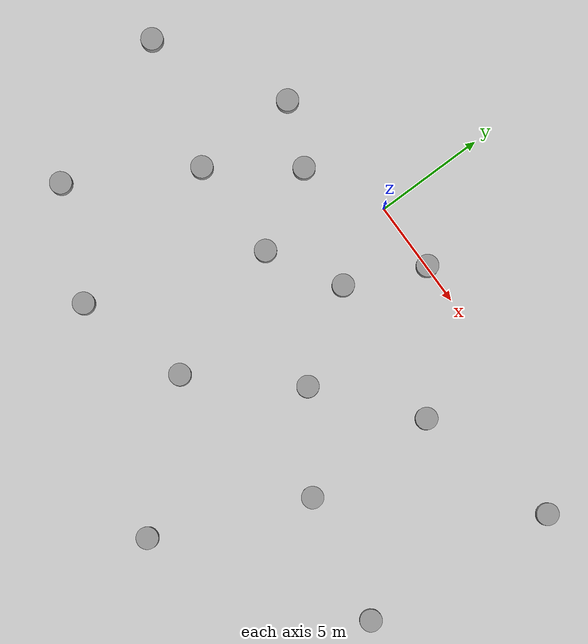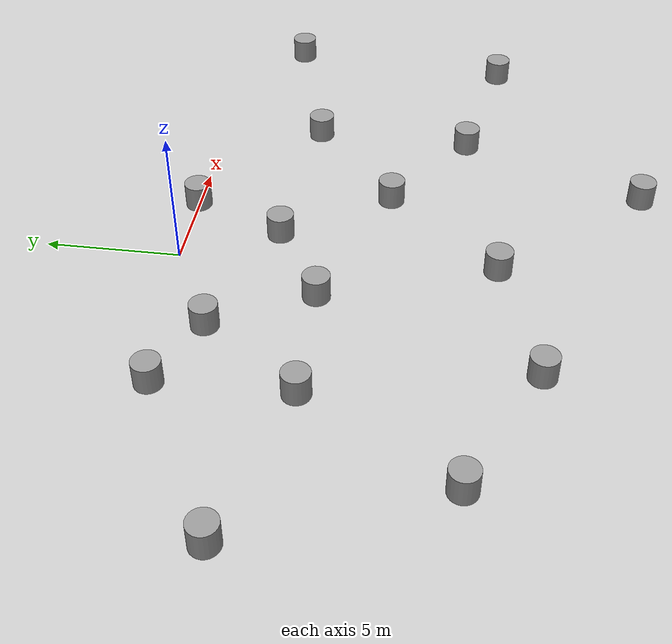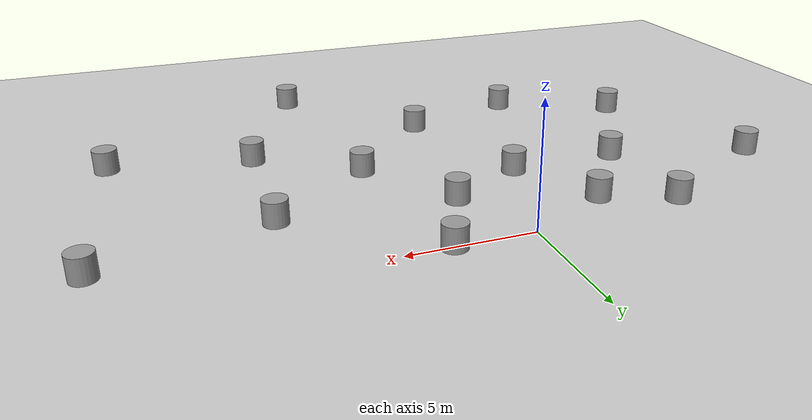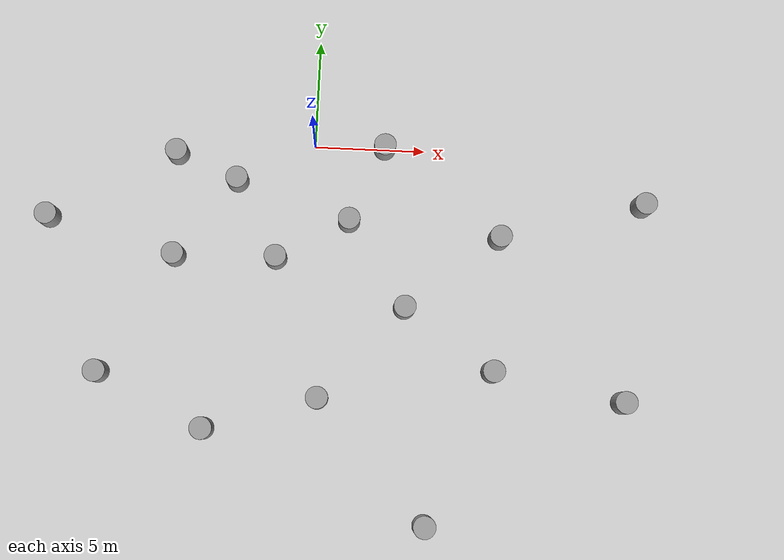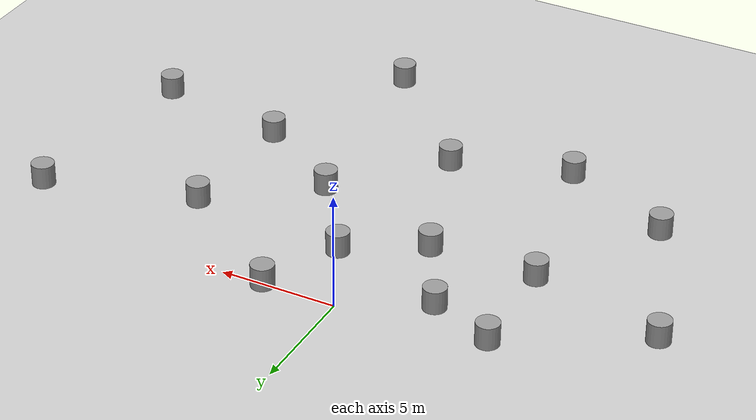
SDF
<sdf version="1.7">
 <world name="default">
  <model name="ground_plane">
   <static>1</static>
   <link name="link">
    <collision name="collision">
     <geometry><plane><normal>0 0 1</normal><size>100 100</size></plane></geometry>
     <surface>
      <contact><collide_bitmask>65535</collide_bitmask></contact>
      <friction><ode><mu>100</mu><mu2>50</mu2></ode></friction>
     </surface>
    </collision>
    <visual name="visual">
     <cast_shadows>0</cast_shadows>
     <geometry><plane><normal>0 0 1</normal><size>100 100</size></plane></geometry>
     <material>
      <script><uri>file://media/materials/scripts/gazebo.material</uri><name>Gazebo/Grey</name></script>
     </material>
    </visual>
   </link>
  </model>
  <model name="fix_cylinder_clone_2">
   <link name="link">
    <inertial>
     <mass>1</mass>
     <inertia><ixx>0.145833</ixx><ixy>0</ixy><ixz>0</ixz><iyy>0.145833</iyy><iyz>0</iyz><izz>0.125</izz></inertia>
    </inertial>
    <visual name="visual">
     <geometry><cylinder><radius>0.5</radius><length>1</length></cylinder></geometry>
     <material>
      <script><name>Gazebo/Grey</name><uri>file://media/materials/scripts/gazebo.material</uri></script>
      <shader type="pixel"/>
     </material>
    </visual>
    <collision name="collision">
     <geometry><cylinder><radius>0.5</radius><length>1</length></cylinder></geometry>
     <surface>
      <friction>
       <ode><mu>1</mu><mu2>1</mu2><fdir1>0 0 0</fdir1><slip1>0</slip1><slip2>0</slip2></ode>
       <torsional>
        <coefficient>1</coefficient>
        <patch_radius>0</patch_radius>
        <surface_radius>0</surface_radius>
        <use_patch_radius>1</use_patch_radius>
        <ode><slip>0</slip></ode>
       </torsional>
      </friction>
      <bounce><restitution_coefficient>0</restitution_coefficient><threshold>1e+06</threshold></bounce>
      <contact>
       <collide_without_contact>0</collide_without_contact>
       <collide_without_contact_bitmask>1</collide_without_contact_bitmask>
       <collide_bitmask>1</collide_bitmask>
       <ode>
        <soft_cfm>0</soft_cfm>
        <soft_erp>0.2</soft_erp>
        <kp>1e+13</kp>
        <kd>1</kd>
        <max_vel>0.01</max_vel>
        <min_depth>0</min_depth>
       </ode>
       <bullet>
        <split_impulse>1</split_impulse>
        <split_impulse_penetration_threshold>-0.01</split_impulse_penetration_threshold>
        <soft_cfm>0</soft_cfm>
        <soft_erp>0.2</soft_erp>
        <kp>1e+13</kp>
        <kd>1</kd>
       </bullet>
      </contact>
     </surface>
    </collision>
   </link>
   <static>1</static>
   <pose>3.17603 0.029626 0.5 0 -0 0</pose>
  </model>
  <model name="fix_cylinder_clone_9">
   <link name="link">
    <inertial>
     <mass>1</mass>
     <inertia><ixx>0.145833</ixx><ixy>0</ixy><ixz>0</ixz><iyy>0.145833</iyy><iyz>0</iyz><izz>0.125</izz></inertia>
    </inertial>
    <visual name="visual">
     <geometry><cylinder><radius>0.5</radius><length>1</length></cylinder></geometry>
     <material>
      <script><name>Gazebo/Grey</name><uri>file://media/materials/scripts/gazebo.material</uri></script>
      <shader type="pixel"/>
     </material>
    </visual>
    <collision name="collision">
     <geometry><cylinder><radius>0.5</radius><length>1</length></cylinder></geometry>
     <surface>
      <friction>
       <ode><mu>1</mu><mu2>1</mu2><fdir1>0 0 0</fdir1><slip1>0</slip1><slip2>0</slip2></ode>
       <torsional>
        <coefficient>1</coefficient>
        <patch_radius>0</patch_radius>
        <surface_radius>0</surface_radius>
        <use_patch_radius>1</use_patch_radius>
        <ode><slip>0</slip></ode>
       </torsional>
      </friction>
      <bounce><restitution_coefficient>0</restitution_coefficient><threshold>1e+06</threshold></bounce>
      <contact>
       <collide_without_contact>0</collide_without_contact>
       <collide_without_contact_bitmask>1</collide_without_contact_bitmask>
       <collide_bitmask>1</collide_bitmask>
       <ode>
        <soft_cfm>0</soft_cfm>
        <soft_erp>0.2</soft_erp>
        <kp>1e+13</kp>
        <kd>1</kd>
        <max_vel>0.01</max_vel>
        <min_depth>0</min_depth>
       </ode>
       <bullet>
        <split_impulse>1</split_impulse>
        <split_impulse_penetration_threshold>-0.01</split_impulse_penetration_threshold>
        <soft_cfm>0</soft_cfm>
        <soft_erp>0.2</soft_erp>
        <kp>1e+13</kp>
        <kd>1</kd>
       </bullet>
      </contact>
     </surface>
    </collision>
   </link>
   <static>1</static>
   <pose>-6.15841 -5.36804 0.5 0 -0 0</pose>
  </model>
  <model name="fix_cylinder_clone_10">
   <link name="link">
    <inertial>
     <mass>1</mass>
     <inertia><ixx>0.145833</ixx><ixy>0</ixy><ixz>0</ixz><iyy>0.145833</iyy><iyz>0</iyz><izz>0.125</izz></inertia>
    </inertial>
    <visual name="visual">
     <geometry><cylinder><radius>0.5</radius><length>1</length></cylinder></geometry>
     <material>
      <script><name>Gazebo/Grey</name><uri>file://media/materials/scripts/gazebo.material</uri></script>
      <shader type="pixel"/>
     </material>
    </visual>
    <collision name="collision">
     <geometry><cylinder><radius>0.5</radius><length>1</length></cylinder></geometry>
     <surface>
      <friction>
       <ode><mu>1</mu><mu2>1</mu2><fdir1>0 0 0</fdir1><slip1>0</slip1><slip2>0</slip2></ode>
       <torsional>
        <coefficient>1</coefficient>
        <patch_radius>0</patch_radius>
        <surface_radius>0</surface_radius>
        <use_patch_radius>1</use_patch_radius>
        <ode><slip>0</slip></ode>
       </torsional>
      </friction>
      <bounce><restitution_coefficient>0</restitution_coefficient><threshold>1e+06</threshold></bounce>
      <contact>
       <collide_without_contact>0</collide_without_contact>
       <collide_without_contact_bitmask>1</collide_without_contact_bitmask>
       <collide_bitmask>1</collide_bitmask>
       <ode>
        <soft_cfm>0</soft_cfm>
        <soft_erp>0.2</soft_erp>
        <kp>1e+13</kp>
        <kd>1</kd>
        <max_vel>0.01</max_vel>
        <min_depth>0</min_depth>
       </ode>
       <bullet>
        <split_impulse>1</split_impulse>
        <split_impulse_penetration_threshold>-0.01</split_impulse_penetration_threshold>
        <soft_cfm>0</soft_cfm>
        <soft_erp>0.2</soft_erp>
        <kp>1e+13</kp>
        <kd>1</kd>
       </bullet>
      </contact>
     </surface>
    </collision>
   </link>
   <static>1</static>
   <pose>-1.55441 -5.29117 0.5 0 -0 0</pose>
  </model>
  <model name="fix_cylinder_clone_11">
   <link name="link">
    <inertial>
     <mass>1</mass>
     <inertia><ixx>0.145833</ixx><ixy>0</ixy><ixz>0</ixz><iyy>0.145833</iyy><iyz>0</iyz><izz>0.125</izz></inertia>
    </inertial>
    <visual name="visual">
     <geometry><cylinder><radius>0.5</radius><length>1</length></cylinder></geometry>
     <material>
      <script><name>Gazebo/Grey</name><uri>file://media/materials/scripts/gazebo.material</uri></script>
      <shader type="pixel"/>
     </material>
    </visual>
    <collision name="collision">
     <geometry><cylinder><radius>0.5</radius><length>1</length></cylinder></geometry>
     <surface>
      <friction>
       <ode><mu>1</mu><mu2>1</mu2><fdir1>0 0 0</fdir1><slip1>0</slip1><slip2>0</slip2></ode>
       <torsional>
        <coefficient>1</coefficient>
        <patch_radius>0</patch_radius>
        <surface_radius>0</surface_radius>
        <use_patch_radius>1</use_patch_radius>
        <ode><slip>0</slip></ode>
       </torsional>
      </friction>
      <bounce><restitution_coefficient>0</restitution_coefficient><threshold>1e+06</threshold></bounce>
      <contact>
       <collide_without_contact>0</collide_without_contact>
       <collide_without_contact_bitmask>1</collide_without_contact_bitmask>
       <collide_bitmask>1</collide_bitmask>
       <ode>
        <soft_cfm>0</soft_cfm>
        <soft_erp>0.2</soft_erp>
        <kp>1e+13</kp>
        <kd>1</kd>
        <max_vel>0.01</max_vel>
        <min_depth>0</min_depth>
       </ode>
       <bullet>
        <split_impulse>1</split_impulse>
        <split_impulse_penetration_threshold>-0.01</split_impulse_penetration_threshold>
        <soft_cfm>0</soft_cfm>
        <soft_erp>0.2</soft_erp>
        <kp>1e+13</kp>
        <kd>1</kd>
       </bullet>
      </contact>
     </surface>
    </collision>
   </link>
   <static>1</static>
   <pose>0.602478 -11.5192 0.5 0 -0 0</pose>
  </model>
  <model name="fix_cylinder_clone_12">
   <link name="link">
    <inertial>
     <mass>1</mass>
     <inertia><ixx>0.145833</ixx><ixy>0</ixy><ixz>0</ixz><iyy>0.145833</iyy><iyz>0</iyz><izz>0.125</izz></inertia>
    </inertial>
    <visual name="visual">
     <geometry><cylinder><radius>0.5</radius><length>1</length></cylinder></geometry>
     <material>
      <script><name>Gazebo/Grey</name><uri>file://media/materials/scripts/gazebo.material</uri></script>
      <shader type="pixel"/>
     </material>
    </visual>
    <collision name="collision">
     <geometry><cylinder><radius>0.5</radius><length>1</length></cylinder></geometry>
     <surface>
      <friction>
       <ode><mu>1</mu><mu2>1</mu2><fdir1>0 0 0</fdir1><slip1>0</slip1><slip2>0</slip2></ode>
       <torsional>
        <coefficient>1</coefficient>
        <patch_radius>0</patch_radius>
        <surface_radius>0</surface_radius>
        <use_patch_radius>1</use_patch_radius>
        <ode><slip>0</slip></ode>
       </torsional>
      </friction>
      <bounce><restitution_coefficient>0</restitution_coefficient><threshold>1e+06</threshold></bounce>
      <contact>
       <collide_without_contact>0</collide_without_contact>
       <collide_without_contact_bitmask>1</collide_without_contact_bitmask>
       <collide_bitmask>1</collide_bitmask>
       <ode>
        <soft_cfm>0</soft_cfm>
        <soft_erp>0.2</soft_erp>
        <kp>1e+13</kp>
        <kd>1</kd>
        <max_vel>0.01</max_vel>
        <min_depth>0</min_depth>
       </ode>
       <bullet>
        <split_impulse>1</split_impulse>
        <split_impulse_penetration_threshold>-0.01</split_impulse_penetration_threshold>
        <soft_cfm>0</soft_cfm>
        <soft_erp>0.2</soft_erp>
        <kp>1e+13</kp>
        <kd>1</kd>
       </bullet>
      </contact>
     </surface>
    </collision>
   </link>
   <static>1</static>
   <pose>4.33584 -7.31858 0.5 0 -0 0</pose>
  </model>
  <model name="fix_cylinder_clone_13">
   <link name="link">
    <inertial>
     <mass>1</mass>
     <inertia><ixx>0.145833</ixx><ixy>0</ixy><ixz>0</ixz><iyy>0.145833</iyy><iyz>0</iyz><izz>0.125</izz></inertia>
    </inertial>
    <visual name="visual">
     <geometry><cylinder><radius>0.5</radius><length>1</length></cylinder></geometry>
     <material>
      <script><name>Gazebo/Grey</name><uri>file://media/materials/scripts/gazebo.material</uri></script>
      <shader type="pixel"/>
     </material>
    </visual>
    <collision name="collision">
     <geometry><cylinder><radius>0.5</radius><length>1</length></cylinder></geometry>
     <surface>
      <friction>
       <ode><mu>1</mu><mu2>1</mu2><fdir1>0 0 0</fdir1><slip1>0</slip1><slip2>0</slip2></ode>
       <torsional>
        <coefficient>1</coefficient>
        <patch_radius>0</patch_radius>
        <surface_radius>0</surface_radius>
        <use_patch_radius>1</use_patch_radius>
        <ode><slip>0</slip></ode>
       </torsional>
      </friction>
      <bounce><restitution_coefficient>0</restitution_coefficient><threshold>1e+06</threshold></bounce>
      <contact>
       <collide_without_contact>0</collide_without_contact>
       <collide_without_contact_bitmask>1</collide_without_contact_bitmask>
       <collide_bitmask>1</collide_bitmask>
       <ode>
        <soft_cfm>0</soft_cfm>
        <soft_erp>0.2</soft_erp>
        <kp>1e+13</kp>
        <kd>1</kd>
        <max_vel>0.01</max_vel>
        <min_depth>0</min_depth>
       </ode>
       <bullet>
        <split_impulse>1</split_impulse>
        <split_impulse_penetration_threshold>-0.01</split_impulse_penetration_threshold>
        <soft_cfm>0</soft_cfm>
        <soft_erp>0.2</soft_erp>
        <kp>1e+13</kp>
        <kd>1</kd>
       </bullet>
      </contact>
     </surface>
    </collision>
   </link>
   <static>1</static>
   <pose>8.53556 -3.96647 0.5 0 -0 0</pose>
  </model>
  <model name="fix_cylinder_clone_14">
   <link name="link">
    <inertial>
     <mass>1</mass>
     <inertia><ixx>0.145833</ixx><ixy>0</ixy><ixz>0</ixz><iyy>0.145833</iyy><iyz>0</iyz><izz>0.125</izz></inertia>
    </inertial>
    <visual name="visual">
     <geometry><cylinder><radius>0.5</radius><length>1</length></cylinder></geometry>
     <material>
      <script><name>Gazebo/Grey</name><uri>file://media/materials/scripts/gazebo.material</uri></script>
      <shader type="pixel"/>
     </material>
    </visual>
    <collision name="collision">
     <geometry><cylinder><radius>0.5</radius><length>1</length></cylinder></geometry>
     <surface>
      <friction>
       <ode><mu>1</mu><mu2>1</mu2><fdir1>0 0 0</fdir1><slip1>0</slip1><slip2>0</slip2></ode>
       <torsional>
        <coefficient>1</coefficient>
        <patch_radius>0</patch_radius>
        <surface_radius>0</surface_radius>
        <use_patch_radius>1</use_patch_radius>
        <ode><slip>0</slip></ode>
       </torsional>
      </friction>
      <bounce><restitution_coefficient>0</restitution_coefficient><threshold>1e+06</threshold></bounce>
      <contact>
       <collide_without_contact>0</collide_without_contact>
       <collide_without_contact_bitmask>1</collide_without_contact_bitmask>
       <collide_bitmask>1</collide_bitmask>
       <ode>
        <soft_cfm>0</soft_cfm>
        <soft_erp>0.2</soft_erp>
        <kp>1e+13</kp>
        <kd>1</kd>
        <max_vel>0.01</max_vel>
        <min_depth>0</min_depth>
       </ode>
       <bullet>
        <split_impulse>1</split_impulse>
        <split_impulse_penetration_threshold>-0.01</split_impulse_penetration_threshold>
        <soft_cfm>0</soft_cfm>
        <soft_erp>0.2</soft_erp>
        <kp>1e+13</kp>
        <kd>1</kd>
       </bullet>
      </contact>
     </surface>
    </collision>
   </link>
   <static>1</static>
   <pose>8.36577 -10.022 0.5 0 -0 0</pose>
  </model>
  <model name="fix_cylinder_clone_15">
   <link name="link">
    <inertial>
     <mass>1</mass>
     <inertia><ixx>0.145833</ixx><ixy>0</ixy><ixz>0</ixz><iyy>0.145833</iyy><iyz>0</iyz><izz>0.125</izz></inertia>
    </inertial>
    <visual name="visual">
     <geometry><cylinder><radius>0.5</radius><length>1</length></cylinder></geometry>
     <material>
      <script><name>Gazebo/Grey</name><uri>file://media/materials/scripts/gazebo.material</uri></script>
      <shader type="pixel"/>
     </material>
    </visual>
    <collision name="collision">
     <geometry><cylinder><radius>0.5</radius><length>1</length></cylinder></geometry>
     <surface>
      <friction>
       <ode><mu>1</mu><mu2>1</mu2><fdir1>0 0 0</fdir1><slip1>0</slip1><slip2>0</slip2></ode>
       <torsional>
        <coefficient>1</coefficient>
        <patch_radius>0</patch_radius>
        <surface_radius>0</surface_radius>
        <use_patch_radius>1</use_patch_radius>
        <ode><slip>0</slip></ode>
       </torsional>
      </friction>
      <bounce><restitution_coefficient>0</restitution_coefficient><threshold>1e+06</threshold></bounce>
      <contact>
       <collide_without_contact>0</collide_without_contact>
       <collide_without_contact_bitmask>1</collide_without_contact_bitmask>
       <collide_bitmask>1</collide_bitmask>
       <ode>
        <soft_cfm>0</soft_cfm>
        <soft_erp>0.2</soft_erp>
        <kp>1e+13</kp>
        <kd>1</kd>
        <max_vel>0.01</max_vel>
        <min_depth>0</min_depth>
       </ode>
       <bullet>
        <split_impulse>1</split_impulse>
        <split_impulse_penetration_threshold>-0.01</split_impulse_penetration_threshold>
        <soft_cfm>0</soft_cfm>
        <soft_erp>0.2</soft_erp>
        <kp>1e+13</kp>
        <kd>1</kd>
       </bullet>
      </contact>
     </surface>
    </collision>
   </link>
   <static>1</static>
   <pose>1.68194 -3.44944 0.5 0 -0 0</pose>
  </model>
  <model name="fix_cylinder_clone_16">
   <link name="link">
    <inertial>
     <mass>1</mass>
     <inertia><ixx>0.145833</ixx><ixy>0</ixy><ixz>0</ixz><iyy>0.145833</iyy><iyz>0</iyz><izz>0.125</izz></inertia>
    </inertial>
    <visual name="visual">
     <geometry><cylinder><radius>0.5</radius><length>1</length></cylinder></geometry>
     <material>
      <script><name>Gazebo/Grey</name><uri>file://media/materials/scripts/gazebo.material</uri></script>
      <shader type="pixel"/>
     </material>
    </visual>
    <collision name="collision">
     <geometry><cylinder><radius>0.5</radius><length>1</length></cylinder></geometry>
     <surface>
      <friction>
       <ode><mu>1</mu><mu2>1</mu2><fdir1>0 0 0</fdir1><slip1>0</slip1><slip2>0</slip2></ode>
       <torsional>
        <coefficient>1</coefficient>
        <patch_radius>0</patch_radius>
        <surface_radius>0</surface_radius>
        <use_patch_radius>1</use_patch_radius>
        <ode><slip>0</slip></ode>
       </torsional>
      </friction>
      <bounce><restitution_coefficient>0</restitution_coefficient><threshold>1e+06</threshold></bounce>
      <contact>
       <collide_without_contact>0</collide_without_contact>
       <collide_without_contact_bitmask>1</collide_without_contact_bitmask>
       <collide_bitmask>1</collide_bitmask>
       <ode>
        <soft_cfm>0</soft_cfm>
        <soft_erp>0.2</soft_erp>
        <kp>1e+13</kp>
        <kd>1</kd>
        <max_vel>0.01</max_vel>
        <min_depth>0</min_depth>
       </ode>
       <bullet>
        <split_impulse>1</split_impulse>
        <split_impulse_penetration_threshold>-0.01</split_impulse_penetration_threshold>
        <soft_cfm>0</soft_cfm>
        <soft_erp>0.2</soft_erp>
        <kp>1e+13</kp>
        <kd>1</kd>
       </bullet>
      </contact>
     </surface>
    </collision>
   </link>
   <static>1</static>
   <pose>-3.48333 -1.77806 0.5 0 -0 0</pose>
  </model>
  <model name="fix_cylinder_clone_17">
   <link name="link">
    <inertial>
     <mass>1</mass>
     <inertia><ixx>0.145833</ixx><ixy>0</ixy><ixz>0</ixz><iyy>0.145833</iyy><iyz>0</iyz><izz>0.125</izz></inertia>
    </inertial>
    <visual name="visual">
     <geometry><cylinder><radius>0.5</radius><length>1</length></cylinder></geometry>
     <material>
      <script><name>Gazebo/Grey</name><uri>file://media/materials/scripts/gazebo.material</uri></script>
      <shader type="pixel"/>
     </material>
    </visual>
    <collision name="collision">
     <geometry><cylinder><radius>0.5</radius><length>1</length></cylinder></geometry>
     <surface>
      <friction>
       <ode><mu>1</mu><mu2>1</mu2><fdir1>0 0 0</fdir1><slip1>0</slip1><slip2>0</slip2></ode>
       <torsional>
        <coefficient>1</coefficient>
        <patch_radius>0</patch_radius>
        <surface_radius>0</surface_radius>
        <use_patch_radius>1</use_patch_radius>
        <ode><slip>0</slip></ode>
       </torsional>
      </friction>
      <bounce><restitution_coefficient>0</restitution_coefficient><threshold>1e+06</threshold></bounce>
      <contact>
       <collide_without_contact>0</collide_without_contact>
       <collide_without_contact_bitmask>1</collide_without_contact_bitmask>
       <collide_bitmask>1</collide_bitmask>
       <ode>
        <soft_cfm>0</soft_cfm>
        <soft_erp>0.2</soft_erp>
        <kp>1e+13</kp>
        <kd>1</kd>
        <max_vel>0.01</max_vel>
        <min_depth>0</min_depth>
       </ode>
       <bullet>
        <split_impulse>1</split_impulse>
        <split_impulse_penetration_threshold>-0.01</split_impulse_penetration_threshold>
        <soft_cfm>0</soft_cfm>
        <soft_erp>0.2</soft_erp>
        <kp>1e+13</kp>
        <kd>1</kd>
       </bullet>
      </contact>
     </surface>
    </collision>
   </link>
   <static>1</static>
   <pose>-6.29919 -0.609601 0.5 0 -0 0</pose>
  </model>
  <model name="fix_cylinder_clone_23">
   <link name="link">
    <inertial>
     <mass>1</mass>
     <inertia><ixx>0.145833</ixx><ixy>0</ixy><ixz>0</ixz><iyy>0.145833</iyy><iyz>0</iyz><izz>0.125</izz></inertia>
    </inertial>
    <visual name="visual">
     <geometry><cylinder><radius>0.5</radius><length>1</length></cylinder></geometry>
     <material>
      <script><name>Gazebo/Grey</name><uri>file://media/materials/scripts/gazebo.material</uri></script>
      <shader type="pixel"/>
     </material>
    </visual>
    <collision name="collision">
     <geometry><cylinder><radius>0.5</radius><length>1</length></cylinder></geometry>
     <surface>
      <friction>
       <ode><mu>1</mu><mu2>1</mu2><fdir1>0 0 0</fdir1><slip1>0</slip1><slip2>0</slip2></ode>
       <torsional>
        <coefficient>1</coefficient>
        <patch_radius>0</patch_radius>
        <surface_radius>0</surface_radius>
        <use_patch_radius>1</use_patch_radius>
        <ode><slip>0</slip></ode>
       </torsional>
      </friction>
      <bounce><restitution_coefficient>0</restitution_coefficient><threshold>1e+06</threshold></bounce>
      <contact>
       <collide_without_contact>0</collide_without_contact>
       <collide_without_contact_bitmask>1</collide_without_contact_bitmask>
       <collide_bitmask>1</collide_bitmask>
       <ode>
        <soft_cfm>0</soft_cfm>
        <soft_erp>0.2</soft_erp>
        <kp>1e+13</kp>
        <kd>1</kd>
        <max_vel>0.01</max_vel>
        <min_depth>0</min_depth>
       </ode>
       <bullet>
        <split_impulse>1</split_impulse>
        <split_impulse_penetration_threshold>-0.01</split_impulse_penetration_threshold>
        <soft_cfm>0</soft_cfm>
        <soft_erp>0.2</soft_erp>
        <kp>1e+13</kp>
        <kd>1</kd>
       </bullet>
      </contact>
     </surface>
    </collision>
   </link>
   <static>1</static>
   <pose>-4.40328 -13.0665 0.5 0 -0 0</pose>
  </model>
  <model name="fix_cylinder_clone_24">
   <link name="link">
    <inertial>
     <mass>1</mass>
     <inertia><ixx>0.145833</ixx><ixy>0</ixy><ixz>0</ixz><iyy>0.145833</iyy><iyz>0</iyz><izz>0.125</izz></inertia>
    </inertial>
    <visual name="visual">
     <geometry><cylinder><radius>0.5</radius><length>1</length></cylinder></geometry>
     <material>
      <script><name>Gazebo/Grey</name><uri>file://media/materials/scripts/gazebo.material</uri></script>
      <shader type="pixel"/>
     </material>
    </visual>
    <collision name="collision">
     <geometry><cylinder><radius>0.5</radius><length>1</length></cylinder></geometry>
     <surface>
      <friction>
       <ode><mu>1</mu><mu2>1</mu2><fdir1>0 0 0</fdir1><slip1>0</slip1><slip2>0</slip2></ode>
       <torsional>
        <coefficient>1</coefficient>
        <patch_radius>0</patch_radius>
        <surface_radius>0</surface_radius>
        <use_patch_radius>1</use_patch_radius>
        <ode><slip>0</slip></ode>
       </torsional>
      </friction>
      <bounce><restitution_coefficient>0</restitution_coefficient><threshold>1e+06</threshold></bounce>
      <contact>
       <collide_without_contact>0</collide_without_contact>
       <collide_without_contact_bitmask>1</collide_without_contact_bitmask>
       <collide_bitmask>1</collide_bitmask>
       <ode>
        <soft_cfm>0</soft_cfm>
        <soft_erp>0.2</soft_erp>
        <kp>1e+13</kp>
        <kd>1</kd>
        <max_vel>0.01</max_vel>
        <min_depth>0</min_depth>
       </ode>
       <bullet>
        <split_impulse>1</split_impulse>
        <split_impulse_penetration_threshold>-0.01</split_impulse_penetration_threshold>
        <soft_cfm>0</soft_cfm>
        <soft_erp>0.2</soft_erp>
        <kp>1e+13</kp>
        <kd>1</kd>
       </bullet>
      </contact>
     </surface>
    </collision>
   </link>
   <static>1</static>
   <pose>-9.25318 -10.7582 0.5 0 -0 0</pose>
  </model>
  <model name="fix_cylinder_clone_25">
   <link name="link">
    <inertial>
     <mass>1</mass>
     <inertia><ixx>0.145833</ixx><ixy>0</ixy><ixz>0</ixz><iyy>0.145833</iyy><iyz>0</iyz><izz>0.125</izz></inertia>
    </inertial>
    <visual name="visual">
     <geometry><cylinder><radius>0.5</radius><length>1</length></cylinder></geometry>
     <material>
      <script><name>Gazebo/Grey</name><uri>file://media/materials/scripts/gazebo.material</uri></script>
      <shader type="pixel"/>
     </material>
    </visual>
    <collision name="collision">
     <geometry><cylinder><radius>0.5</radius><length>1</length></cylinder></geometry>
     <surface>
      <friction>
       <ode><mu>1</mu><mu2>1</mu2><fdir1>0 0 0</fdir1><slip1>0</slip1><slip2>0</slip2></ode>
       <torsional>
        <coefficient>1</coefficient>
        <patch_radius>0</patch_radius>
        <surface_radius>0</surface_radius>
        <use_patch_radius>1</use_patch_radius>
        <ode><slip>0</slip></ode>
       </torsional>
      </friction>
      <bounce><restitution_coefficient>0</restitution_coefficient><threshold>1e+06</threshold></bounce>
      <contact>
       <collide_without_contact>0</collide_without_contact>
       <collide_without_contact_bitmask>1</collide_without_contact_bitmask>
       <collide_bitmask>1</collide_bitmask>
       <ode>
        <soft_cfm>0</soft_cfm>
        <soft_erp>0.2</soft_erp>
        <kp>1e+13</kp>
        <kd>1</kd>
        <max_vel>0.01</max_vel>
        <min_depth>0</min_depth>
       </ode>
       <bullet>
        <split_impulse>1</split_impulse>
        <split_impulse_penetration_threshold>-0.01</split_impulse_penetration_threshold>
        <soft_cfm>0</soft_cfm>
        <soft_erp>0.2</soft_erp>
        <kp>1e+13</kp>
        <kd>1</kd>
       </bullet>
      </contact>
     </surface>
    </collision>
   </link>
   <static>1</static>
   <pose>-11.9859 -3.80781 0.5 0 -0 0</pose>
  </model>
  <model name="fix_cylinder_clone_28">
   <link name="link">
    <inertial>
     <mass>1</mass>
     <inertia><ixx>0.145833</ixx><ixy>0</ixy><ixz>0</ixz><iyy>0.145833</iyy><iyz>0</iyz><izz>0.125</izz></inertia>
    </inertial>
    <visual name="visual">
     <geometry><cylinder><radius>0.5</radius><length>1</length></cylinder></geometry>
     <material>
      <script><name>Gazebo/Grey</name><uri>file://media/materials/scripts/gazebo.material</uri></script>
      <shader type="pixel"/>
     </material>
    </visual>
    <collision name="collision">
     <geometry><cylinder><radius>0.5</radius><length>1</length></cylinder></geometry>
     <surface>
      <friction>
       <ode><mu>1</mu><mu2>1</mu2><fdir1>0 0 0</fdir1><slip1>0</slip1><slip2>0</slip2></ode>
       <torsional>
        <coefficient>1</coefficient>
        <patch_radius>0</patch_radius>
        <surface_radius>0</surface_radius>
        <use_patch_radius>1</use_patch_radius>
        <ode><slip>0</slip></ode>
       </torsional>
      </friction>
      <bounce><restitution_coefficient>0</restitution_coefficient><threshold>1e+06</threshold></bounce>
      <contact>
       <collide_without_contact>0</collide_without_contact>
       <collide_without_contact_bitmask>1</collide_without_contact_bitmask>
       <collide_bitmask>1</collide_bitmask>
       <ode>
        <soft_cfm>0</soft_cfm>
        <soft_erp>0.2</soft_erp>
        <kp>1e+13</kp>
        <kd>1</kd>
        <max_vel>0.01</max_vel>
        <min_depth>0</min_depth>
       </ode>
       <bullet>
        <split_impulse>1</split_impulse>
        <split_impulse_penetration_threshold>-0.01</split_impulse_penetration_threshold>
        <soft_cfm>0</soft_cfm>
        <soft_erp>0.2</soft_erp>
        <kp>1e+13</kp>
        <kd>1</kd>
       </bullet>
      </contact>
     </surface>
    </collision>
   </link>
   <static>1</static>
   <pose>15.024 -2.18559 0.5 0 -0 0</pose>
  </model>
  <model name="fix_cylinder_clone_29">
   <link name="link">
    <inertial>
     <mass>1</mass>
     <inertia><ixx>0.145833</ixx><ixy>0</ixy><ixz>0</ixz><iyy>0.145833</iyy><iyz>0</iyz><izz>0.125</izz></inertia>
    </inertial>
    <visual name="visual">
     <geometry><cylinder><radius>0.5</radius><length>1</length></cylinder></geometry>
     <material>
      <script><name>Gazebo/Grey</name><uri>file://media/materials/scripts/gazebo.material</uri></script>
      <shader type="pixel"/>
     </material>
    </visual>
    <collision name="collision">
     <geometry><cylinder><radius>0.5</radius><length>1</length></cylinder></geometry>
     <surface>
      <friction>
       <ode><mu>1</mu><mu2>1</mu2><fdir1>0 0 0</fdir1><slip1>0</slip1><slip2>0</slip2></ode>
       <torsional>
        <coefficient>1</coefficient>
        <patch_radius>0</patch_radius>
        <surface_radius>0</surface_radius>
        <use_patch_radius>1</use_patch_radius>
        <ode><slip>0</slip></ode>
       </torsional>
      </friction>
      <bounce><restitution_coefficient>0</restitution_coefficient><threshold>1e+06</threshold></bounce>
      <contact>
       <collide_without_contact>0</collide_without_contact>
       <collide_without_contact_bitmask>1</collide_without_contact_bitmask>
       <collide_bitmask>1</collide_bitmask>
       <ode>
        <soft_cfm>0</soft_cfm>
        <soft_erp>0.2</soft_erp>
        <kp>1e+13</kp>
        <kd>1</kd>
        <max_vel>0.01</max_vel>
        <min_depth>0</min_depth>
       </ode>
       <bullet>
        <split_impulse>1</split_impulse>
        <split_impulse_penetration_threshold>-0.01</split_impulse_penetration_threshold>
        <soft_cfm>0</soft_cfm>
        <soft_erp>0.2</soft_erp>
        <kp>1e+13</kp>
        <kd>1</kd>
       </bullet>
      </contact>
     </surface>
    </collision>
   </link>
   <static>1</static>
   <pose>14.1873 -11.1427 0.5 0 -0 0</pose>
  </model>
  <model name="fix_cylinder_clone_30">
   <link name="link">
    <inertial>
     <mass>1</mass>
     <inertia><ixx>0.145833</ixx><ixy>0</ixy><ixz>0</ixz><iyy>0.145833</iyy><iyz>0</iyz><izz>0.125</izz></inertia>
    </inertial>
    <visual name="visual">
     <geometry><cylinder><radius>0.5</radius><length>1</length></cylinder></geometry>
     <material>
      <script><name>Gazebo/Grey</name><uri>file://media/materials/scripts/gazebo.material</uri></script>
      <shader type="pixel"/>
     </material>
    </visual>
    <collision name="collision">
     <geometry><cylinder><radius>0.5</radius><length>1</length></cylinder></geometry>
     <surface>
      <friction>
       <ode><mu>1</mu><mu2>1</mu2><fdir1>0 0 0</fdir1><slip1>0</slip1><slip2>0</slip2></ode>
       <torsional>
        <coefficient>1</coefficient>
        <patch_radius>0</patch_radius>
        <surface_radius>0</surface_radius>
        <use_patch_radius>1</use_patch_radius>
        <ode><slip>0</slip></ode>
       </torsional>
      </friction>
      <bounce><restitution_coefficient>0</restitution_coefficient><threshold>1e+06</threshold></bounce>
      <contact>
       <collide_without_contact>0</collide_without_contact>
       <collide_without_contact_bitmask>1</collide_without_contact_bitmask>
       <collide_bitmask>1</collide_bitmask>
       <ode>
        <soft_cfm>0</soft_cfm>
        <soft_erp>0.2</soft_erp>
        <kp>1e+13</kp>
        <kd>1</kd>
        <max_vel>0.01</max_vel>
        <min_depth>0</min_depth>
       </ode>
       <bullet>
        <split_impulse>1</split_impulse>
        <split_impulse_penetration_threshold>-0.01</split_impulse_penetration_threshold>
        <soft_cfm>0</soft_cfm>
        <soft_erp>0.2</soft_erp>
        <kp>1e+13</kp>
        <kd>1</kd>
       </bullet>
      </contact>
     </surface>
    </collision>
   </link>
   <static>1</static>
   <pose>5.51846 -16.878 0.5 0 -0 0</pose>
  </model>
 </world>
</sdf>
